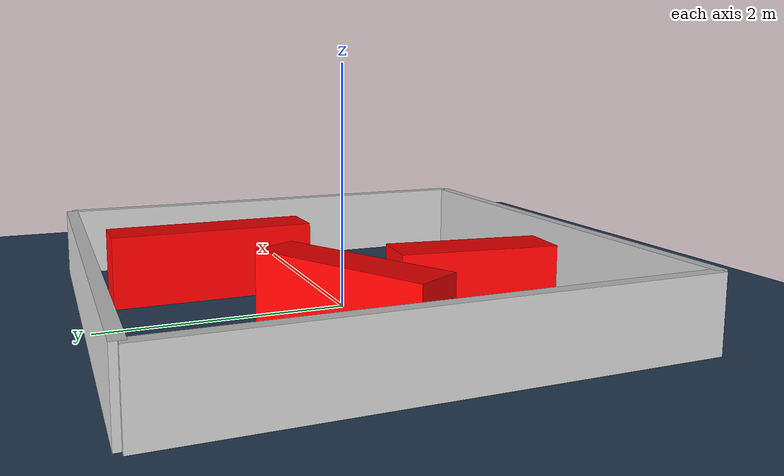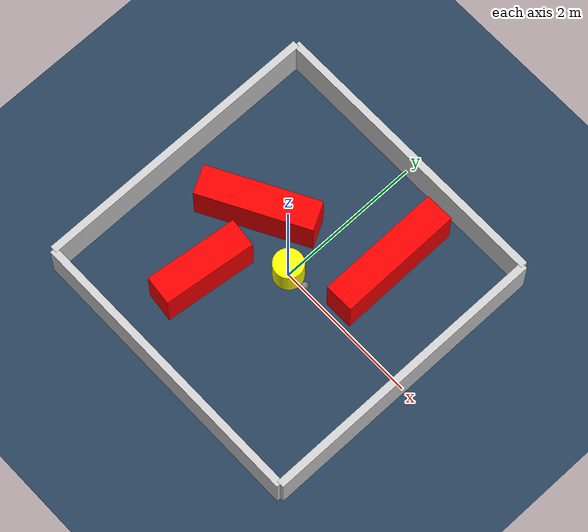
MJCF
<?xml version="1.0" ?>
<mujoco model="generated_environment">
  <option timestep="0.01" integrator="RK4" cone="elliptic"/>
  <default>
    <geom density="1"/>
  </default>
  <asset>
    <texture builtin="gradient" height="3072" rgb1="0.3 0.5 0.7" rgb2="0 0 0" type="skybox" width="512"/>
    <texture builtin="checker" height="300" mark="edge" markrgb="0.8 0.8 0.8" name="groundplane" rgb1="0.2 0.3 0.4" rgb2="0.1 0.2 0.3" type="2d" width="300"/>
    <material name="groundplane" reflectance="0.2" texrepeat="5 5" texture="groundplane" texuniform="true"/>
    <material name="robot" rgba="0.0 1.0 0.0 1"/>
  </asset>
  <worldbody>
    <light dir="0 0 -1" directional="true" pos="0 0 1.5"/>
    <geom condim="4" friction="1.0 0.005 0.001" material="groundplane" name="floor" size="0 0 0.05" type="plane"/>
    <body name="walls">
      <geom name="wall_1" condim="4" pos="-2.0 0.0 0.3" rgba="0.800000011920929 0.800000011920929 0.800000011920929 1.0" size="0.05 2.0 0.3" type="box"/>
      <geom name="wall_2" condim="4" pos="2.0 0.0 0.3" rgba="0.800000011920929 0.800000011920929 0.800000011920929 1.0" size="0.05 2.0 0.3" type="box"/>
      <geom name="wall_3" condim="4" pos="0.0 -2.0 0.3" rgba="0.800000011920929 0.800000011920929 0.800000011920929 1.0" size="2.0 0.05 0.3" type="box"/>
      <geom name="wall_4" condim="4" pos="0.0 2.0 0.3" rgba="0.800000011920929 0.800000011920929 0.800000011920929 1.0" size="2.0 0.05 0.3" type="box"/>
    </body>
    <body name="robot">
      <joint name="joint_x" type="slide" pos="0 0 0" axis="1 0 0"/>
      <joint name="joint_y" type="slide" pos="0 0 0" axis="0 1 0"/>
      <geom name="robot" type="sphere" pos="0.3 0.0 0.2" size="0.05" mass="5." friction="1.0 0.005 0.0001" condim="4" rgba="0.5 0.5 0.5 1.0"/>
      <site name="sensor_ball"/>
    </body>
    <body name="obstacle_movable_1">
      <geom name="obstacle_movable_1" condim="4" pos="0.0 0.0 0.2" euler="0 0 0.0" friction="1.0 0.005 0.001" rgba="1.0 1.0 0.0 1.0" size="0.2 0.2 0.0" type="cylinder" mass="0.1"/>
      <joint type="free"/>
    </body>
    <body name="obstacle_2_static">
      <geom name="obstacle_2_static" condim="4" pos="-0.8180617251430734 0.26130275384470747 0.3" euler="0 0 28.515296334027713" friction="1.0 0.005 0.001" rgba="1 0 0 1" size="0.7700684891421838 0.2 0.3" type="box"/>
    </body>
    <body name="obstacle_3_static">
      <geom name="obstacle_3_static" condim="4" pos="-0.6837870311729662 -0.8077884658403018 0.3" euler="0 0 263.36179327360935" friction="1.0 0.005 0.001" rgba="1 0 0 1" size="0.6316722307681661 0.2 0.3" type="box"/>
    </body>
    <body name="obstacle_4_static">
      <geom name="obstacle_4_static" condim="4" pos="0.7831591679202421 0.9309710570851768 0.3" euler="0 0 90.58977595895624" friction="1.0 0.005 0.001" rgba="1 0 0 1" size="0.8495774276040906 0.2 0.3" type="box"/>
    </body>
  </worldbody>
  <actuator>
    <motor name="actuator_x" joint="joint_x" gear="1" ctrlrange="-1 1"/>
    <motor name="actuator_y" joint="joint_y" gear="1" ctrlrange="-1 1"/>
  </actuator>
</mujoco>
